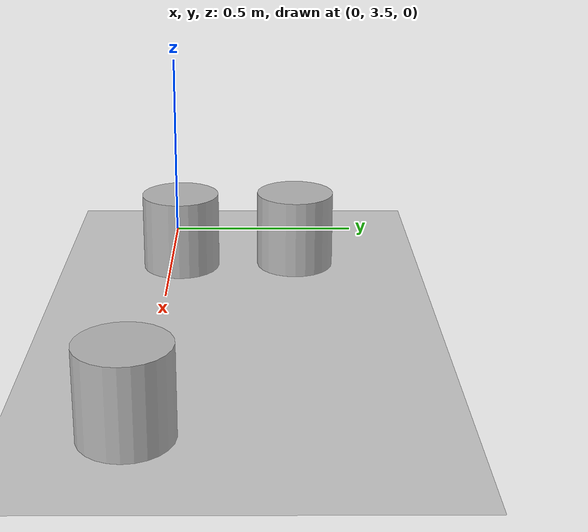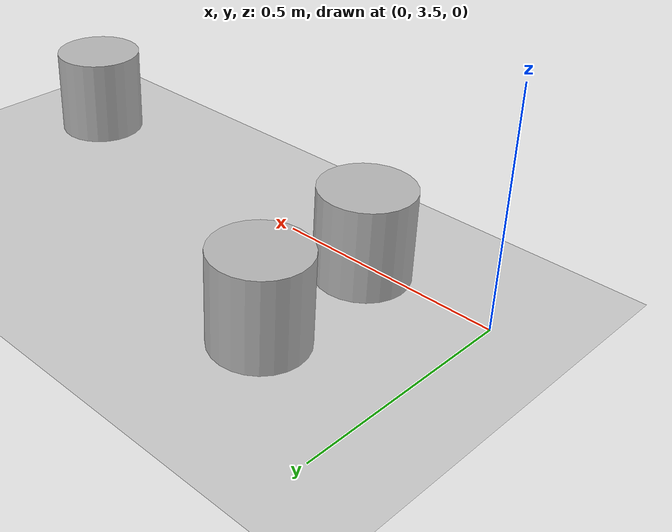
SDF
<?xml version="1.0" ?>
<sdf version="1.4">
    <world name="myworld">
        <include>
            <uri>model://sun</uri>
        </include>
        <include>
            <uri>model://ground_plane</uri>
        </include>
        <model name="cylinder_1">
            <pose>0.285261 3.529006 0 0 0 0</pose>
            <link name="cyl">
                <pose>0 0 0.1 0 0 0</pose>
                <collision name="collision">
                    <geometry>
                        <cylinder>
                            <radius>0.1</radius>
                            <length>0.2</length>
                        </cylinder>
                    </geometry>
                </collision>
                <visual name="visual">
                    <geometry>
                        <cylinder>
                            <radius>0.1</radius>
                            <length>0.2</length>
                        </cylinder>
                    </geometry>
                </visual>
            </link>
            <static>1</static>
        </model>
        <model name="cylinder_2">
            <pose>0.273470 3.831811 0 0 0 0</pose>
            <link name="cyl">
                <pose>0 0 0.1 0 0 0</pose>
                <collision name="collision">
                    <geometry>
                        <cylinder>
                            <radius>0.1</radius>
                            <length>0.2</length>
                        </cylinder>
                    </geometry>
                </collision>
                <visual name="visual">
                    <geometry>
                        <cylinder>
                            <radius>0.1</radius>
                            <length>0.2</length>
                        </cylinder>
                    </geometry>
                </visual>
            </link>
            <static>1</static>
        </model>
        <model name="cylinder_3">
            <pose>1.190098 3.476045 0 0 0 0</pose>
            <link name="cyl">
                <pose>0 0 0.1 0 0 0</pose>
                <collision name="collision">
                    <geometry>
                        <cylinder>
                            <radius>0.1</radius>
                            <length>0.2</length>
                        </cylinder>
                    </geometry>
                </collision>
                <visual name="visual">
                    <geometry>
                        <cylinder>
                            <radius>0.1</radius>
                            <length>0.2</length>
                        </cylinder>
                    </geometry>
                </visual>
            </link>
            <static>1</static>
        </model>
    </world>
</sdf>
